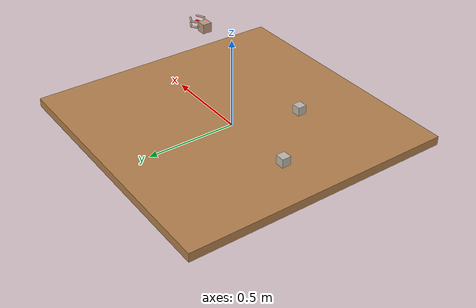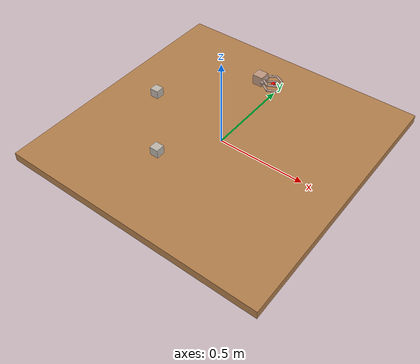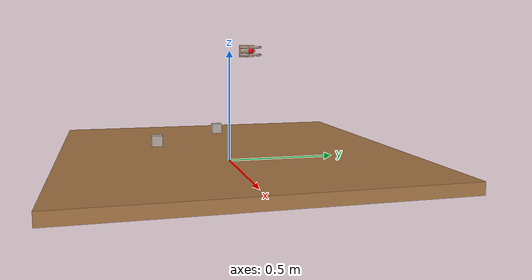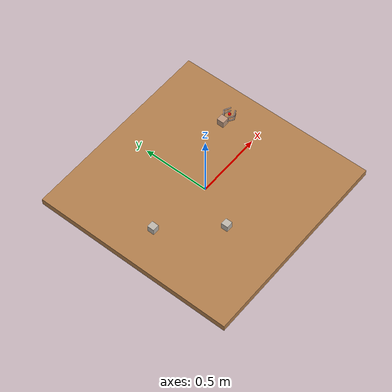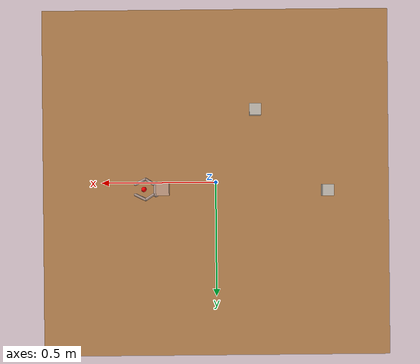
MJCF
<?xml version="1.0" ?>
<mujoco model="clutter">
    <compiler angle="radian" coordinate="local" meshdir="/Users/dementrock/research/openai/gpr/gpr/worldgen/data"
              texturedir="/Users/dementrock/research/openai/gpr/gpr/worldgen/data"/>
    <size nuser_actuator="1" nuser_geom="1" nuser_jnt="1"/>
    <size nconmax="2000" njmax="2000"/>
    <option gravity="0 0 -9.810000" integrator="Euler" iterations="200" solver="CG" timestep="0.002000"
            viscosity="0.000000">
        <flag warmstart="disable"/>
    </option>
    <visual>
        <headlight active="1"/>
    </visual>
    <asset>
        <texture builtin="none" file="textures/wood.png" name="noise_texture0" type="2d"/>
        <material name="material0" texture="noise_texture0"/>
        <texture builtin="none" file="textures/chars/A.png" gridlayout=".U..LFRB.D.." gridsize="3 4"
                 name="noise_texture3" type="cube"/>
        <material name="material3" texture="noise_texture3"/>
        <texture builtin="none" file="textures/chars/B.png" gridlayout=".U..LFRB.D.." gridsize="3 4"
                 name="noise_texture5" type="cube"/>
        <material name="material5" texture="noise_texture5"/>
    </asset>
    <worldbody>
        <!-- ================ MOCAP ================= /-->
        <!--  ================= ARM ================= /-->
        <body name="basearm_1" pos="0.205759326319 0.0251937476615 0.5">
            <camera euler="0 0 0" fovy="40" name="rgb" pos="0 0 2"/>
            <geom class="geom0_1" pos="0 0 0" size="0.025 0.025 0.025" type="box"/>
            <joint axis="1 0 0" class="base_1" name="robot:x_1" pos="0 0 0" type="slide"/>
            <joint axis="0 1 0" class="base_1" name="robot:y_1" pos="0 0 0" type="slide"/>
            <joint axis="0 0 1" class="base_1" name="robot:z_1" pos="0 0 0" type="slide"/>
            <joint axis="1 0 0" class="rot_1" name="robot:rot_x_1" pos="0 0 0" type="hinge"/>
            <joint axis="0 1 0" class="rot_1" name="robot:rot_y_1" pos="0 0 0" type="hinge"/>
            <joint axis="0 0 1" class="rot_1" name="robot:rot_z_1" pos="0 0 0" type="hinge"/>
            <!--  ================= Palm ================= /-->
            <body name="claw_1" pos="0.025 0 0" quat="0 1 0 0">
                <geom class="geom1_1" fromto="0 .02 0 0 -.02 0" name="Geomclaw_1" size="0.01" type="capsule"/>
                <body name="rightclaw_1" pos=".01 -.02 0">
                    <geom class="geom1_1" fromto="0 0 0.015 .03 -.02 0.015" name="rightclaw_it_1" size="0.005"
                          type="capsule"/>
                    <geom class="geom1_1" fromto=".03 -.02 0.015 .07 0 0.015" name="rightclaw_ot_1" size="0.005"
                          type="capsule"/>
                    <geom class="geom1_1" fromto="0 0 -0.015 .03 -.02 -0.015" name="rightclaw_ib_1" size="0.005"
                          type="capsule"/>
                    <geom class="geom1_1" fromto=".03 -.02 -0.015 .07 0 -0.015" name="rightclaw_ob_1" size="0.005"
                          type="capsule"/>
                    <joint axis="0 0 -1" class="arm_1" name="robot:rc_close_1" pos="0 0 0" range="-1.05 1.05"
                           type="hinge" user="008"/>
                </body>
                <body name="leftclaw_1" pos=".01 .02 0">
                    <geom class="geom1_1" fromto="0 0 0.015 .03 .02 0.015" name="leftclaw_it_1" size="0.005"
                          type="capsule"/>
                    <geom class="geom1_1" fromto=".03 .02 0.015 .07 0 0.015" name="leftclaw_ot_1" size="0.005"
                          type="capsule"/>
                    <geom class="geom1_1" fromto="0 0 -0.015 .03 .02 -0.015" name="leftclaw_ib_1" size="0.005"
                          type="capsule"/>
                    <geom class="geom1_1" fromto=".03 .02 -0.015 .07 0 -0.015" name="leftclaw_ob_1" size="0.005"
                          type="capsule"/>
                    <joint axis="0 0 1" class="arm_1" name="robot:lc_close_1" pos="0 0 0" range="-1.05 1.05"
                           type="hinge" user="009"/>
                </body>
                <site name="grip" pos="0.0475 0 0" rgba="1. 0. 0. 1." size="0.01 0.01 0.01"/>
            </body>
        </body>
        <body name="annotation:outer_bound_1" pos="0.248259326319 0.0251937476615 0.2875">
            <geom conaffinity="0" contype="0" mass="0.0" pos="0 0 0" rgba="0 0 0 0" size="0.0675 0.045 0.2375"
                  type="box"/>
        </body>
        <body name="geom2" pos="-0.171879 -0.313206 0.075000">
            <geom conaffinity="1" condim="3" contype="1" mass="1.0" material="material3"
                  size="0.024950 0.024950 0.024950" type="box"/>
            <joint armature="0.0001" axis="1 0 0" damping="0.01" limited="false" name="geom2:slide0" pos="0 0 0"
                   type="slide"/>
            <joint armature="0.0001" axis="0 1 0" damping="0.01" limited="false" name="geom2:slide1" pos="0 0 0"
                   type="slide"/>
            <joint armature="0.0001" axis="0 0 1" damping="0.01" limited="false" name="geom2:slide2" pos="0 0 0"
                   type="slide"/>
            <joint armature="0.0001" axis="1 0 0" damping="0.01" limited="false" name="geom2:hinge0" pos="0 0 0"
                   type="hinge"/>
            <joint armature="0.0001" axis="0 1 0" damping="0.01" limited="false" name="geom2:hinge1" pos="0 0 0"
                   type="hinge"/>
            <joint armature="0.0001" axis="0 0 1" damping="0.01" limited="false" name="geom2:hinge2" pos="0 0 0"
                   type="hinge"/>
            <site name="geom0" pos="0.000000 0.000000 0.000000" rgba="0 0 1 1" size="0.010000 0.010000 0.010000"/>
        </body>
        <body name="geom4" pos="-0.482283 0.037409 0.075000">
            <geom conaffinity="1" condim="3" contype="1" mass="1.0" material="material5"
                  size="0.024950 0.024950 0.024950" type="box"/>
            <joint armature="0.0001" axis="1 0 0" damping="0.01" limited="false" name="geom4:slide0" pos="0 0 0"
                   type="slide"/>
            <joint armature="0.0001" axis="0 1 0" damping="0.01" limited="false" name="geom4:slide1" pos="0 0 0"
                   type="slide"/>
            <joint armature="0.0001" axis="0 0 1" damping="0.01" limited="false" name="geom4:slide2" pos="0 0 0"
                   type="slide"/>
            <joint armature="0.0001" axis="1 0 0" damping="0.01" limited="false" name="geom4:hinge0" pos="0 0 0"
                   type="hinge"/>
            <joint armature="0.0001" axis="0 1 0" damping="0.01" limited="false" name="geom4:hinge1" pos="0 0 0"
                   type="hinge"/>
            <joint armature="0.0001" axis="0 0 1" damping="0.01" limited="false" name="geom4:hinge2" pos="0 0 0"
                   type="hinge"/>
            <site name="geom1" pos="0.000000 0.000000 0.000000" rgba="0 0 1 1" size="0.010000 0.010000 0.010000"/>
        </body>
        <body name="floor" pos="0.000000 0.000000 0.025000">
            <geom condim="3" material="material0" size="0.75 0.75 0.025" type="box"/>
        </body>
    </worldbody>
    <actuator>
        <!--  ================= Position actuators ================= /-->
        <position class="position_1" ctrllimited="false" joint="robot:x_1" kp="200" name="robot:x_1"/>
        <position class="position_1" ctrllimited="false" joint="robot:y_1" kp="200" name="robot:y_1"/>
        <position class="position_1" ctrllimited="false" joint="robot:z_1" kp="200" name="robot:z_1"/>
        <position class="position_1" ctrllimited="false" joint="robot:rot_x_1" kp="200" name="robot:rot_x_PD_1"/>
        <position class="position_1" ctrllimited="false" joint="robot:rot_y_1" kp="200" name="robot:rot_y_PD_1"/>
        <position class="position_1" ctrllimited="false" joint="robot:rot_z_1" kp="200" name="robot:rot_z_PD_1"/>
        <position class="position_1" ctrlrange="-1.05 1.05" joint="robot:rc_close_1" kp="100"
                  name="robot:Arc_close_1" user="1"/>
        <position class="position_1" ctrlrange="-1.05 1.05" joint="robot:lc_close_1" kp="100"
                  name="robot:Alc_close_1" user="1"/>
    </actuator>
    <default>
        <default class="position_1">
            <position ctrllimited="true" forcelimited="false"/>
        </default>
        <default class="geom0_1">
            <geom conaffinity="1" contype="1" friction="1 0.005 0.001" margin="0.001" rgba=".75 .6 .5 1"
                  solimp="0.95 0.95 0.01" solref="0.008 1" user="0"/>
        </default>
        <default class="geom1_1">
            <geom conaffinity="1" contype="1" friction="1 0.005 0.001" margin="0.001" rgba=".7 .6 .55 1"
                  solimp="0.95 0.95 0.01" solref="0.008 1" user="0"/>
        </default>
        <default class="arm_1">
            <joint armature="0.1" damping="10" limited="true" stiffness="0" user="0"/>
        </default>
        <default class="base_1">
            <joint armature="1" damping="30" limited="false" stiffness="0" user="0"/>
        </default>
        <default class="rot_1">
            <joint armature="0.1" damping="10" limited="false" stiffness="0" user="0"/>
        </default>
    </default>
    <equality>
    </equality>
    <contact>
    </contact>
</mujoco>
